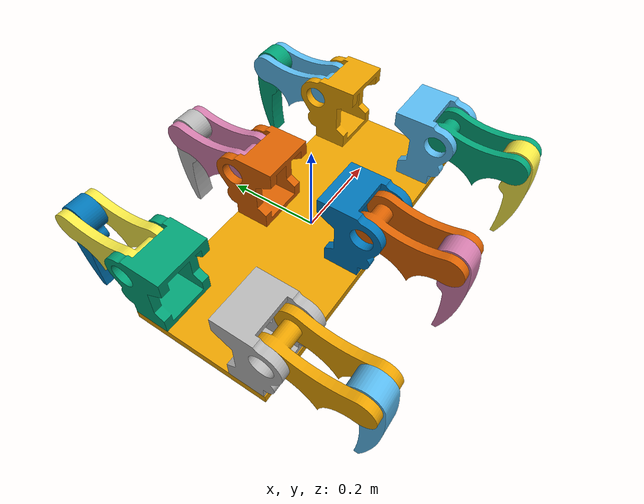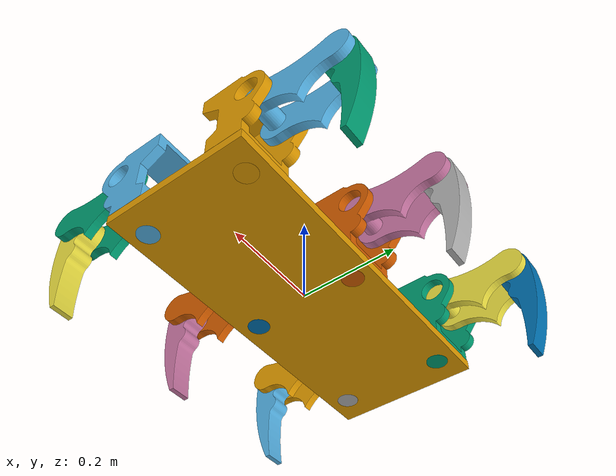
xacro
<?xml version="1.0"?>
<!-- vim: set ft=xml sw=2 : -->
<robot xmlns:xacro="http://www.ros.org/wiki/xacro" name="Stomp">
  <xacro:macro name="leg" params="idx parent position orientation">
    <joint name="leg_pivot_${idx}" type="continuous">
      <parent link="${parent}"/>
      <child link="leg_hip_${idx}"/>
      <axis xyz="0 0 1"/>
      <origin xyz="${position}" rpy="${orientation}"/>
    </joint>
    <link name="leg_hip_${idx}">
      <visual>
        <geometry>
          <mesh filename="Leg 1 Hip Simplified.obj"/>
        </geometry>
      </visual>
      <inertial>
        <origin xyz="-0.002 -0.004 -0.025"/>
        <mass value="2.067"/>
        <inertia ixx="0.009" ixy="0" ixz="0" iyy="0.011" iyz="-0.001" izz="0.007"/>
      </inertial>
      <collision>
        <geometry>
          <mesh filename="Leg 1 Hip Simplified.obj"/>
        </geometry>
      </collision>
    </link>
    <joint name="leg_knee_${idx}" type="continuous">
      <parent link="leg_hip_${idx}" />
      <child link="leg_thigh_${idx}" />
      <origin xyz="0 -0.041 0.0" />
      <axis xyz="1 0 0" />
    </joint>
    <link name="leg_thigh_${idx}">
      <visual>
        <geometry>
          <mesh filename="Leg 1 Thigh Simplified.obj"/>
        </geometry>
      </visual>
      <inertial>
        <origin xyz="0 -0.048 -0.003"/>
        <mass value="1.512"/>
        <inertia ixx="0.01" ixy="0" ixz="0" iyy="0.002" iyz="0" izz="0.011"/>
      </inertial>
      <collision>
        <geometry>
          <mesh filename="Leg 1 Thigh Simplified.obj"/>
        </geometry>
      </collision>
    </link>
    <joint name="leg_ankle_${idx}" type="continuous">
      <parent link="leg_thigh_${idx}" />
      <child link="leg_foot_${idx}" />
      <origin xyz="0 -0.160 0" />
      <axis xyz="1 0 0" />
    </joint>
    <link name="leg_foot_${idx}">
      <visual>
        <geometry>
          <mesh filename="Leg 1 Foot Simplified.obj"/>
        </geometry>
      </visual>
      <inertial>
        <origin xyz="0 -0.008 -0.053"/>
        <mass value="0.600"/>
        <inertia ixx=".003" ixy="0" ixz="0" iyy="0.002" iyz="0" izz="0.0003"/>
      </inertial>
      <collision>
        <geometry>
          <mesh filename="Leg 1 Foot Simplified.obj"/>
        </geometry>
      </collision>
    </link>
  </xacro:macro>
  <link name="base">
    <visual>
      <geometry>
        <box size="0.72 0.3 0.02"/>
      </geometry>
      <origin xyz="0 0 -0.01"/>
    </visual>
  </link>
  <xacro:leg idx="0" parent="base" position=" 0.30 -0.11 0.112" orientation="0 0 0"/>
  <xacro:leg idx="1" parent="base" position=" 0.00 -0.11 0.112" orientation="0 0 0"/>
  <xacro:leg idx="2" parent="base" position="-0.30 -0.11 0.112" orientation="0 0 0"/>
  <xacro:leg idx="3" parent="base" position="-0.30  0.11 0.112" orientation="0 0 ${pi}"/>
  <xacro:leg idx="4" parent="base" position=" 0.00  0.11 0.112" orientation="0 0 ${pi}"/>
  <xacro:leg idx="5" parent="base" position=" 0.30  0.11 0.112" orientation="0 0 ${pi}"/>
</robot>
